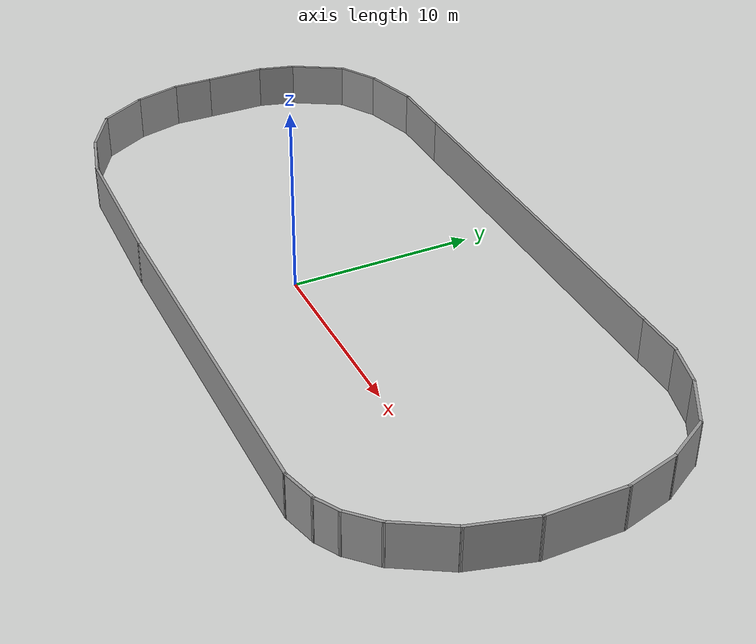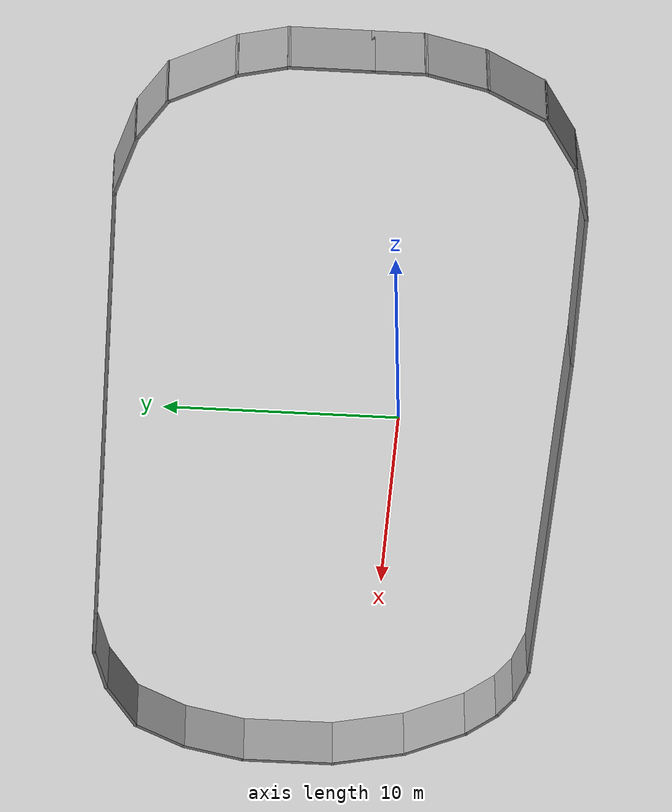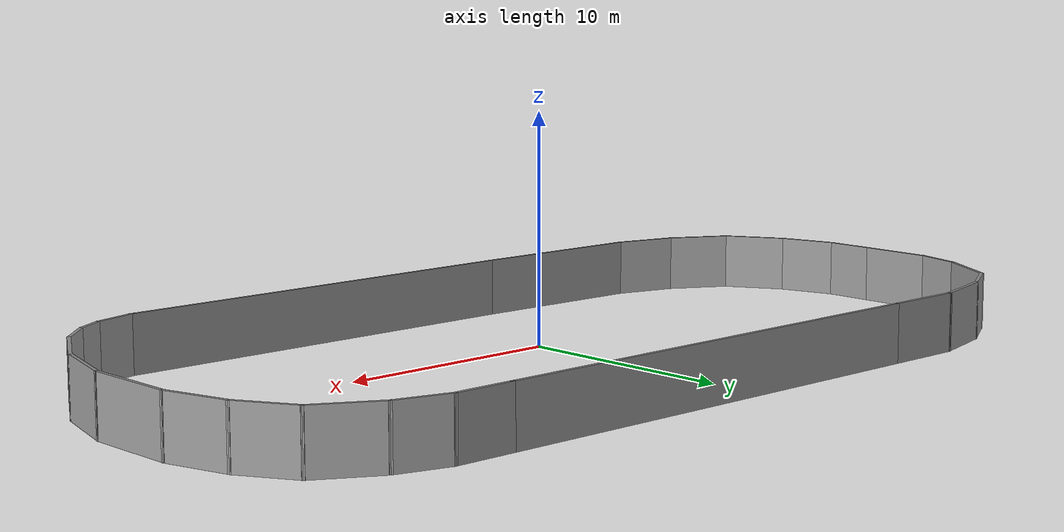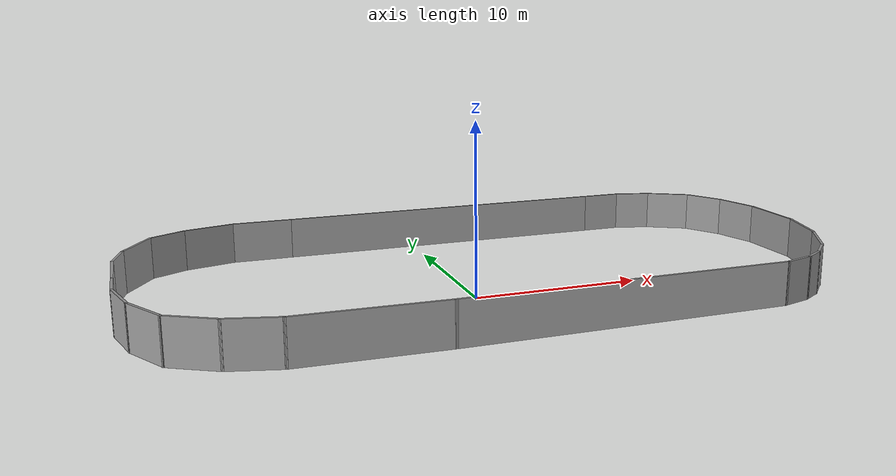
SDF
<?xml version='1.0'?>
<sdf version='1.7'>
  <model name='Untitled'>
    <pose>1.6209 2.70814 0 0 -0 0</pose>
    <link name='Wall_40'>
      <collision name='Wall_40_Collision'>
        <geometry>
          <box>
            <size>19.25 0.15 2.5</size>
          </box>
        </geometry>
        <pose>0 0 1.25 0 -0 0</pose>
      </collision>
      <visual name='Wall_40_Visual'>
        <pose>0 0 1.25 0 -0 0</pose>
        <geometry>
          <box>
            <size>19.25 0.15 2.5</size>
          </box>
        </geometry>
        <material>
          <script>
            <uri>file://media/materials/scripts/gazebo.material</uri>
            <name>Gazebo/Grey</name>
          </script>
          <ambient>1 1 1 1</ambient>
        </material>
        <meta>
          <layer>0</layer>
        </meta>
      </visual>
      <pose>4.3681 -9.76014 0 0 -0 0</pose>
    </link>
    <link name='Wall_41'>
      <collision name='Wall_41_Collision'>
        <geometry>
          <box>
            <size>2 0.15 2.5</size>
          </box>
        </geometry>
        <pose>0 0 1.25 0 -0 0</pose>
      </collision>
      <visual name='Wall_41_Visual'>
        <pose>0 0 1.25 0 -0 0</pose>
        <geometry>
          <box>
            <size>2 0.15 2.5</size>
          </box>
        </geometry>
        <material>
          <script>
            <uri>file://media/materials/scripts/gazebo.material</uri>
            <name>Gazebo/Grey</name>
          </script>
          <ambient>1 1 1 1</ambient>
        </material>
        <meta>
          <layer>0</layer>
        </meta>
      </visual>
      <pose>14.8116 -9.52073 0 0 -0 0.261799</pose>
    </link>
    <link name='Wall_42'>
      <collision name='Wall_42_Collision'>
        <geometry>
          <box>
            <size>1.5 0.15 2.5</size>
          </box>
        </geometry>
        <pose>0 0 1.25 0 -0 0</pose>
      </collision>
      <visual name='Wall_42_Visual'>
        <pose>0 0 1.25 0 -0 0</pose>
        <geometry>
          <box>
            <size>1.5 0.15 2.5</size>
          </box>
        </geometry>
        <material>
          <script>
            <uri>file://media/materials/scripts/gazebo.material</uri>
            <name>Gazebo/Grey</name>
          </script>
          <ambient>1 1 1 1</ambient>
        </material>
        <meta>
          <layer>0</layer>
        </meta>
      </visual>
      <pose>16.2896 -8.94382 0 0 -0 0.523599</pose>
    </link>
    <link name='Wall_43'>
      <collision name='Wall_43_Collision'>
        <geometry>
          <box>
            <size>2 0.15 2.5</size>
          </box>
        </geometry>
        <pose>0 0 1.25 0 -0 0</pose>
      </collision>
      <visual name='Wall_43_Visual'>
        <pose>0 0 1.25 0 -0 0</pose>
        <geometry>
          <box>
            <size>2 0.15 2.5</size>
          </box>
        </geometry>
        <material>
          <script>
            <uri>file://media/materials/scripts/gazebo.material</uri>
            <name>Gazebo/Grey</name>
          </script>
          <ambient>1 1 1 1</ambient>
        </material>
        <meta>
          <layer>0</layer>
        </meta>
      </visual>
      <pose>17.5283 -7.95225 0 0 -0 0.785398</pose>
    </link>
    <link name='Wall_44'>
      <collision name='Wall_44_Collision'>
        <geometry>
          <box>
            <size>3.25 0.15 2.5</size>
          </box>
        </geometry>
        <pose>0 0 1.25 0 -0 0</pose>
      </collision>
      <visual name='Wall_44_Visual'>
        <pose>0 0 1.25 0 -0 0</pose>
        <geometry>
          <box>
            <size>3.25 0.15 2.5</size>
          </box>
        </geometry>
        <material>
          <script>
            <uri>file://media/materials/scripts/gazebo.material</uri>
            <name>Gazebo/Grey</name>
          </script>
          <ambient>1 1 1 1</ambient>
        </material>
        <meta>
          <layer>0</layer>
        </meta>
      </visual>
      <pose>18.9573 -5.95583 0 0 -0 1.0472</pose>
    </link>
    <link name='Wall_45'>
      <collision name='Wall_45_Collision'>
        <geometry>
          <box>
            <size>3.5 0.15 2.5</size>
          </box>
        </geometry>
        <pose>0 0 1.25 0 -0 0</pose>
      </collision>
      <visual name='Wall_45_Visual'>
        <pose>0 0 1.25 0 -0 0</pose>
        <geometry>
          <box>
            <size>3.5 0.15 2.5</size>
          </box>
        </geometry>
        <material>
          <script>
            <uri>file://media/materials/scripts/gazebo.material</uri>
            <name>Gazebo/Grey</name>
          </script>
          <ambient>1 1 1 1</ambient>
        </material>
        <meta>
          <layer>0</layer>
        </meta>
      </visual>
      <pose>20.1659 -2.99557 0 0 -0 1.309</pose>
    </link>
    <link name='Wall_46'>
      <collision name='Wall_46_Collision'>
        <geometry>
          <box>
            <size>4.25 0.15 2.5</size>
          </box>
        </geometry>
        <pose>0 0 1.25 0 -0 0</pose>
      </collision>
      <visual name='Wall_46_Visual'>
        <pose>0 0 1.25 0 -0 0</pose>
        <geometry>
          <box>
            <size>4.25 0.15 2.5</size>
          </box>
        </geometry>
        <material>
          <script>
            <uri>file://media/materials/scripts/gazebo.material</uri>
            <name>Gazebo/Grey</name>
          </script>
          <ambient>1 1 1 1</ambient>
        </material>
        <meta>
          <layer>0</layer>
        </meta>
      </visual>
      <pose>20.5994 0.672357 0 0 -0 1.5708</pose>
    </link>
    <link name='Wall_47'>
      <collision name='Wall_47_Collision'>
        <geometry>
          <box>
            <size>3 0.15 2.5</size>
          </box>
        </geometry>
        <pose>0 0 1.25 0 -0 0</pose>
      </collision>
      <visual name='Wall_47_Visual'>
        <pose>0 0 1.25 0 -0 0</pose>
        <geometry>
          <box>
            <size>3 0.15 2.5</size>
          </box>
        </geometry>
        <material>
          <script>
            <uri>file://media/materials/scripts/gazebo.material</uri>
            <name>Gazebo/Grey</name>
          </script>
          <ambient>1 1 1 1</ambient>
        </material>
        <meta>
          <layer>0</layer>
        </meta>
      </visual>
      <pose>20.2306 4.0988 0 0 -0 1.8326</pose>
    </link>
    <link name='Wall_48'>
      <collision name='Wall_48_Collision'>
        <geometry>
          <box>
            <size>2.75 0.15 2.5</size>
          </box>
        </geometry>
        <pose>0 0 1.25 0 -0 0</pose>
      </collision>
      <visual name='Wall_48_Visual'>
        <pose>0 0 1.25 0 -0 0</pose>
        <geometry>
          <box>
            <size>2.75 0.15 2.5</size>
          </box>
        </geometry>
        <material>
          <script>
            <uri>file://media/materials/scripts/gazebo.material</uri>
            <name>Gazebo/Grey</name>
          </script>
          <ambient>1 1 1 1</ambient>
        </material>
        <meta>
          <layer>0</layer>
        </meta>
      </visual>
      <pose>19.2118 6.60108 0 0 -0 2.0944</pose>
    </link>
    <link name='Wall_49'>
      <collision name='Wall_49_Collision'>
        <geometry>
          <box>
            <size>3 0.15 2.5</size>
          </box>
        </geometry>
        <pose>0 0 1.25 0 -0 0</pose>
      </collision>
      <visual name='Wall_49_Visual'>
        <pose>0 0 1.25 0 -0 0</pose>
        <geometry>
          <box>
            <size>3 0.15 2.5</size>
          </box>
        </geometry>
        <material>
          <script>
            <uri>file://media/materials/scripts/gazebo.material</uri>
            <name>Gazebo/Grey</name>
          </script>
          <ambient>1 1 1 1</ambient>
        </material>
        <meta>
          <layer>0</layer>
        </meta>
      </visual>
      <pose>17.3277 8.43941 0 0 -0 2.61799</pose>
    </link>
    <link name='Wall_50'>
      <collision name='Wall_50_Collision'>
        <geometry>
          <box>
            <size>2.5 0.15 2.5</size>
          </box>
        </geometry>
        <pose>0 0 1.25 0 -0 0</pose>
      </collision>
      <visual name='Wall_50_Visual'>
        <pose>0 0 1.25 0 -0 0</pose>
        <geometry>
          <box>
            <size>2.5 0.15 2.5</size>
          </box>
        </geometry>
        <material>
          <script>
            <uri>file://media/materials/scripts/gazebo.material</uri>
            <name>Gazebo/Grey</name>
          </script>
          <ambient>1 1 1 1</ambient>
        </material>
        <meta>
          <layer>0</layer>
        </meta>
      </visual>
      <pose>14.9586 9.45602 0 0 -0 2.87979</pose>
    </link>
    <link name='Wall_51'>
      <collision name='Wall_51_Collision'>
        <geometry>
          <box>
            <size>2.75 0.15 2.5</size>
          </box>
        </geometry>
        <pose>0 0 1.25 0 -0 0</pose>
      </collision>
      <visual name='Wall_51_Visual'>
        <pose>0 0 1.25 0 -0 0</pose>
        <geometry>
          <box>
            <size>2.75 0.15 2.5</size>
          </box>
        </geometry>
        <material>
          <script>
            <uri>file://media/materials/scripts/gazebo.material</uri>
            <name>Gazebo/Grey</name>
          </script>
          <ambient>1 1 1 1</ambient>
        </material>
        <meta>
          <layer>0</layer>
        </meta>
      </visual>
      <pose>12.5237 9.76014 0 0 -0 3.14159</pose>
    </link>
    <link name='Wall_52'>
      <collision name='Wall_52_Collision'>
        <geometry>
          <box>
            <size>21.25 0.15 2.5</size>
          </box>
        </geometry>
        <pose>0 0 1.25 0 -0 0</pose>
      </collision>
      <visual name='Wall_52_Visual'>
        <pose>0 0 1.25 0 -0 0</pose>
        <geometry>
          <box>
            <size>21.25 0.15 2.5</size>
          </box>
        </geometry>
        <material>
          <script>
            <uri>file://media/materials/scripts/gazebo.material</uri>
            <name>Gazebo/Grey</name>
          </script>
          <ambient>1 1 1 1</ambient>
        </material>
        <meta>
          <layer>0</layer>
        </meta>
      </visual>
      <pose>0.673659 9.76014 0 0 -0 3.14159</pose>
    </link>
    <link name='Wall_53'>
      <collision name='Wall_53_Collision'>
        <geometry>
          <box>
            <size>3.75 0.15 2.5</size>
          </box>
        </geometry>
        <pose>0 0 1.25 0 -0 0</pose>
      </collision>
      <visual name='Wall_53_Visual'>
        <pose>0 0 1.25 0 -0 0</pose>
        <geometry>
          <box>
            <size>3.75 0.15 2.5</size>
          </box>
        </geometry>
        <material>
          <script>
            <uri>file://media/materials/scripts/gazebo.material</uri>
            <name>Gazebo/Grey</name>
          </script>
          <ambient>1 1 1 1</ambient>
        </material>
        <meta>
          <layer>0</layer>
        </meta>
      </visual>
      <pose>-11.6763 9.76014 0 0 -0 3.14159</pose>
    </link>
    <link name='Wall_54'>
      <collision name='Wall_54_Collision'>
        <geometry>
          <box>
            <size>3.25 0.15 2.5</size>
          </box>
        </geometry>
        <pose>0 0 1.25 0 -0 0</pose>
      </collision>
      <visual name='Wall_54_Visual'>
        <pose>0 0 1.25 0 -0 0</pose>
        <geometry>
          <box>
            <size>3.25 0.15 2.5</size>
          </box>
        </geometry>
        <material>
          <script>
            <uri>file://media/materials/scripts/gazebo.material</uri>
            <name>Gazebo/Grey</name>
          </script>
          <ambient>1 1 1 1</ambient>
        </material>
        <meta>
          <layer>0</layer>
        </meta>
      </visual>
      <pose>-14.9735 9.35897 0 0 -0 -2.87979</pose>
    </link>
    <link name='Wall_55'>
      <collision name='Wall_55_Collision'>
        <geometry>
          <box>
            <size>2.5 0.15 2.5</size>
          </box>
        </geometry>
        <pose>0 0 1.25 0 -0 0</pose>
      </collision>
      <visual name='Wall_55_Visual'>
        <pose>0 0 1.25 0 -0 0</pose>
        <geometry>
          <box>
            <size>2.5 0.15 2.5</size>
          </box>
        </geometry>
        <material>
          <script>
            <uri>file://media/materials/scripts/gazebo.material</uri>
            <name>Gazebo/Grey</name>
          </script>
          <ambient>1 1 1 1</ambient>
        </material>
        <meta>
          <layer>0</layer>
        </meta>
      </visual>
      <pose>-17.4883 8.3703 0 0 -0 -2.61799</pose>
    </link>
    <link name='Wall_56'>
      <collision name='Wall_56_Collision'>
        <geometry>
          <box>
            <size>3.25 0.15 2.5</size>
          </box>
        </geometry>
        <pose>0 0 1.25 0 -0 0</pose>
      </collision>
      <visual name='Wall_56_Visual'>
        <pose>0 0 1.25 0 -0 0</pose>
        <geometry>
          <box>
            <size>3.25 0.15 2.5</size>
          </box>
        </geometry>
        <material>
          <script>
            <uri>file://media/materials/scripts/gazebo.material</uri>
            <name>Gazebo/Grey</name>
          </script>
          <ambient>1 1 1 1</ambient>
        </material>
        <meta>
          <layer>0</layer>
        </meta>
      </visual>
      <pose>-19.2809 6.44046 0 0 -0 -2.0944</pose>
    </link>
    <link name='Wall_57'>
      <collision name='Wall_57_Collision'>
        <geometry>
          <box>
            <size>2.25 0.15 2.5</size>
          </box>
        </geometry>
        <pose>0 0 1.25 0 -0 0</pose>
      </collision>
      <visual name='Wall_57_Visual'>
        <pose>0 0 1.25 0 -0 0</pose>
        <geometry>
          <box>
            <size>2.25 0.15 2.5</size>
          </box>
        </geometry>
        <material>
          <script>
            <uri>file://media/materials/scripts/gazebo.material</uri>
            <name>Gazebo/Grey</name>
          </script>
          <ambient>1 1 1 1</ambient>
        </material>
        <meta>
          <layer>0</layer>
        </meta>
      </visual>
      <pose>-20.3276 4.0839 0 0 -0 -1.8326</pose>
    </link>
    <link name='Wall_58'>
      <collision name='Wall_58_Collision'>
        <geometry>
          <box>
            <size>3.5 0.15 2.5</size>
          </box>
        </geometry>
        <pose>0 0 1.25 0 -0 0</pose>
      </collision>
      <visual name='Wall_58_Visual'>
        <pose>0 0 1.25 0 -0 0</pose>
        <geometry>
          <box>
            <size>3.5 0.15 2.5</size>
          </box>
        </geometry>
        <material>
          <script>
            <uri>file://media/materials/scripts/gazebo.material</uri>
            <name>Gazebo/Grey</name>
          </script>
          <ambient>1 1 1 1</ambient>
        </material>
        <meta>
          <layer>0</layer>
        </meta>
      </visual>
      <pose>-20.5994 1.39467 0 0 -0 -1.5708</pose>
    </link>
    <link name='Wall_59'>
      <collision name='Wall_59_Collision'>
        <geometry>
          <box>
            <size>2.25 0.15 2.5</size>
          </box>
        </geometry>
        <pose>0 0 1.25 0 -0 0</pose>
      </collision>
      <visual name='Wall_59_Visual'>
        <pose>0 0 1.25 0 -0 0</pose>
        <geometry>
          <box>
            <size>2.25 0.15 2.5</size>
          </box>
        </geometry>
        <material>
          <script>
            <uri>file://media/materials/scripts/gazebo.material</uri>
            <name>Gazebo/Grey</name>
          </script>
          <ambient>1 1 1 1</ambient>
        </material>
        <meta>
          <layer>0</layer>
        </meta>
      </visual>
      <pose>-20.5994 -1.33033 0 0 -0 -1.5708</pose>
    </link>
    <link name='Wall_60'>
      <collision name='Wall_60_Collision'>
        <geometry>
          <box>
            <size>2.75 0.15 2.5</size>
          </box>
        </geometry>
        <pose>0 0 1.25 0 -0 0</pose>
      </collision>
      <visual name='Wall_60_Visual'>
        <pose>0 0 1.25 0 -0 0</pose>
        <geometry>
          <box>
            <size>2.75 0.15 2.5</size>
          </box>
        </geometry>
        <material>
          <script>
            <uri>file://media/materials/scripts/gazebo.material</uri>
            <name>Gazebo/Grey</name>
          </script>
          <ambient>1 1 1 1</ambient>
        </material>
        <meta>
          <layer>0</layer>
        </meta>
      </visual>
      <pose>-20.2629 -3.63603 0 0 -0 -1.309</pose>
    </link>
    <link name='Wall_61'>
      <collision name='Wall_61_Collision'>
        <geometry>
          <box>
            <size>3 0.15 2.5</size>
          </box>
        </geometry>
        <pose>0 0 1.25 0 -0 0</pose>
      </collision>
      <visual name='Wall_61_Visual'>
        <pose>0 0 1.25 0 -0 0</pose>
        <geometry>
          <box>
            <size>3 0.15 2.5</size>
          </box>
        </geometry>
        <material>
          <script>
            <uri>file://media/materials/scripts/gazebo.material</uri>
            <name>Gazebo/Grey</name>
          </script>
          <ambient>1 1 1 1</ambient>
        </material>
        <meta>
          <layer>0</layer>
        </meta>
      </visual>
      <pose>-19.214 -6.12582 0 0 -0 -1.0472</pose>
    </link>
    <link name='Wall_62'>
      <collision name='Wall_62_Collision'>
        <geometry>
          <box>
            <size>3 0.15 2.5</size>
          </box>
        </geometry>
        <pose>0 0 1.25 0 -0 0</pose>
      </collision>
      <visual name='Wall_62_Visual'>
        <pose>0 0 1.25 0 -0 0</pose>
        <geometry>
          <box>
            <size>3 0.15 2.5</size>
          </box>
        </geometry>
        <material>
          <script>
            <uri>file://media/materials/scripts/gazebo.material</uri>
            <name>Gazebo/Grey</name>
          </script>
          <ambient>1 1 1 1</ambient>
        </material>
        <meta>
          <layer>0</layer>
        </meta>
      </visual>
      <pose>-17.2674 -8.07241 0 0 -0 -0.523599</pose>
    </link>
    <link name='Wall_63'>
      <collision name='Wall_63_Collision'>
        <geometry>
          <box>
            <size>3 0.15 2.5</size>
          </box>
        </geometry>
        <pose>0 0 1.25 0 -0 0</pose>
      </collision>
      <visual name='Wall_63_Visual'>
        <pose>0 0 1.25 0 -0 0</pose>
        <geometry>
          <box>
            <size>3 0.15 2.5</size>
          </box>
        </geometry>
        <material>
          <script>
            <uri>file://media/materials/scripts/gazebo.material</uri>
            <name>Gazebo/Grey</name>
          </script>
          <ambient>1 1 1 1</ambient>
        </material>
        <meta>
          <layer>0</layer>
        </meta>
      </visual>
      <pose>-14.6568 -9.15372 0 0 -0 -0.261799</pose>
    </link>
    <link name='Wall_64'>
      <collision name='Wall_64_Collision'>
        <geometry>
          <box>
            <size>8.25199 0.15 2.5</size>
          </box>
        </geometry>
        <pose>0 0 1.25 0 -0 0</pose>
      </collision>
      <visual name='Wall_64_Visual'>
        <pose>0 0 1.25 0 -0 0</pose>
        <geometry>
          <box>
            <size>8.25199 0.15 2.5</size>
          </box>
        </geometry>
        <material>
          <script>
            <uri>file://media/materials/scripts/gazebo.material</uri>
            <name>Gazebo/Grey</name>
          </script>
          <ambient>1 1 1 1</ambient>
        </material>
        <meta>
          <layer>0</layer>
        </meta>
      </visual>
      <pose>-9.23115 -9.64134 0 0 -0 -0.02933</pose>
    </link>
    <static>1</static>
  </model>
</sdf>
